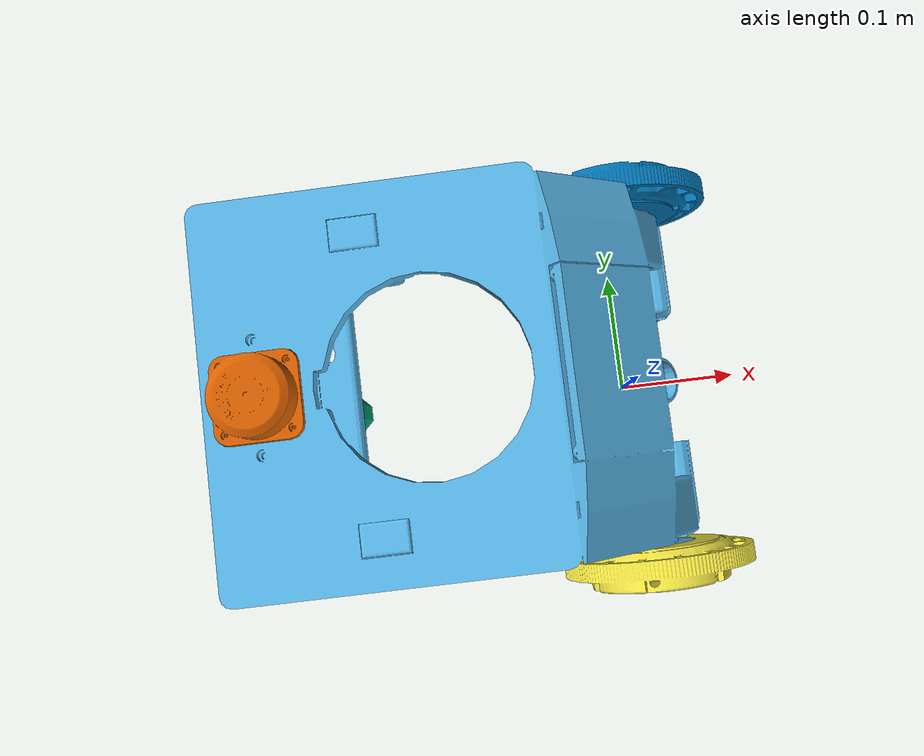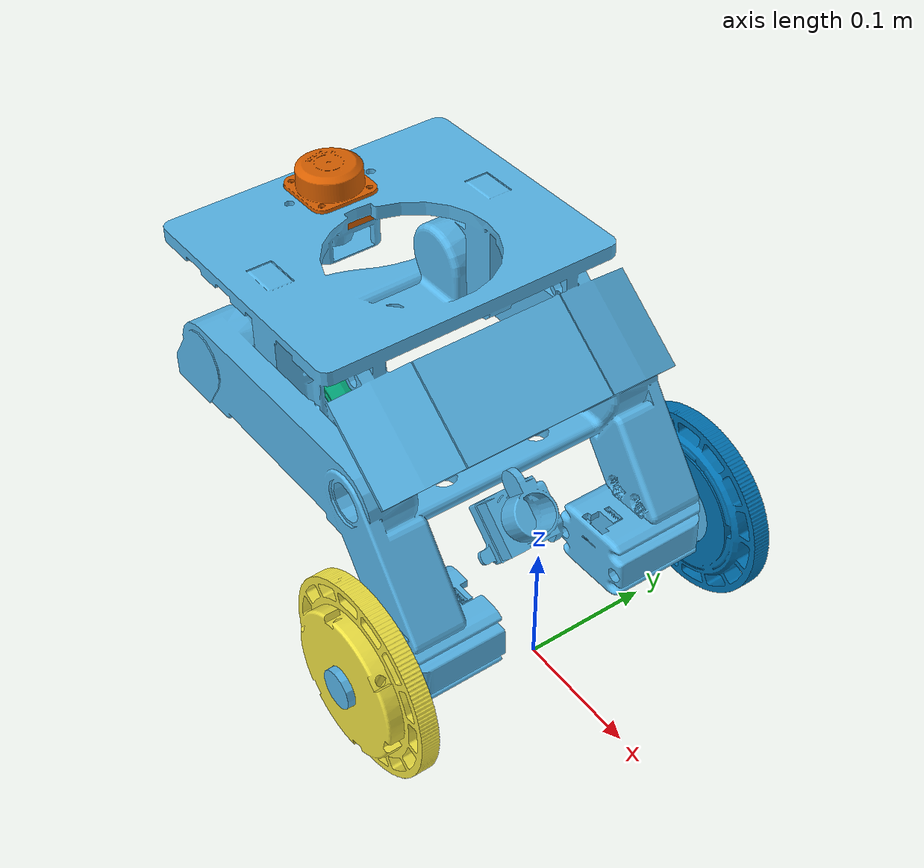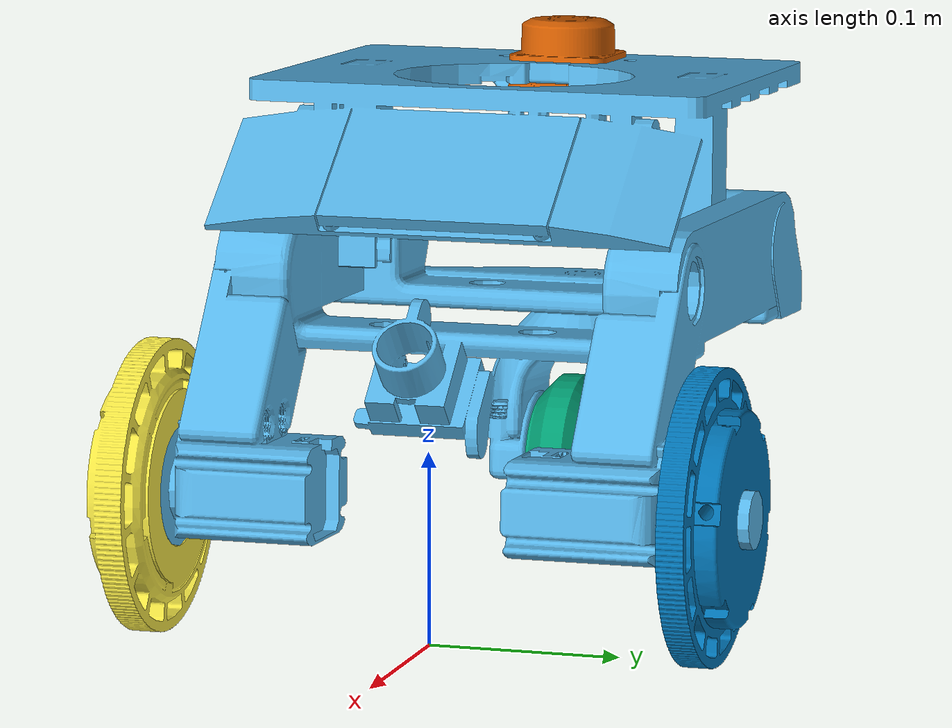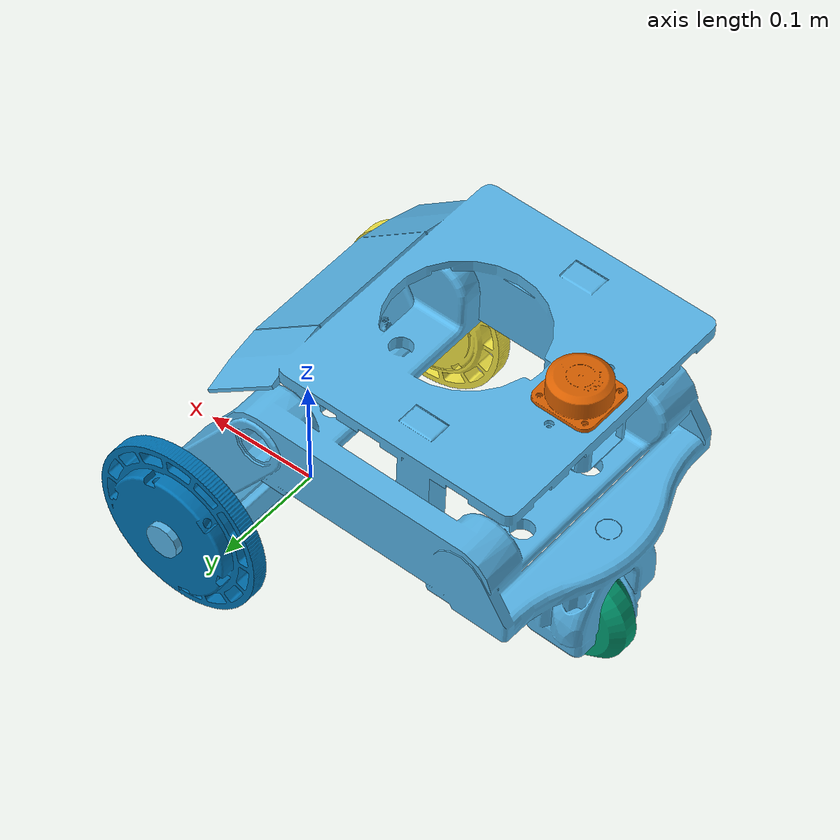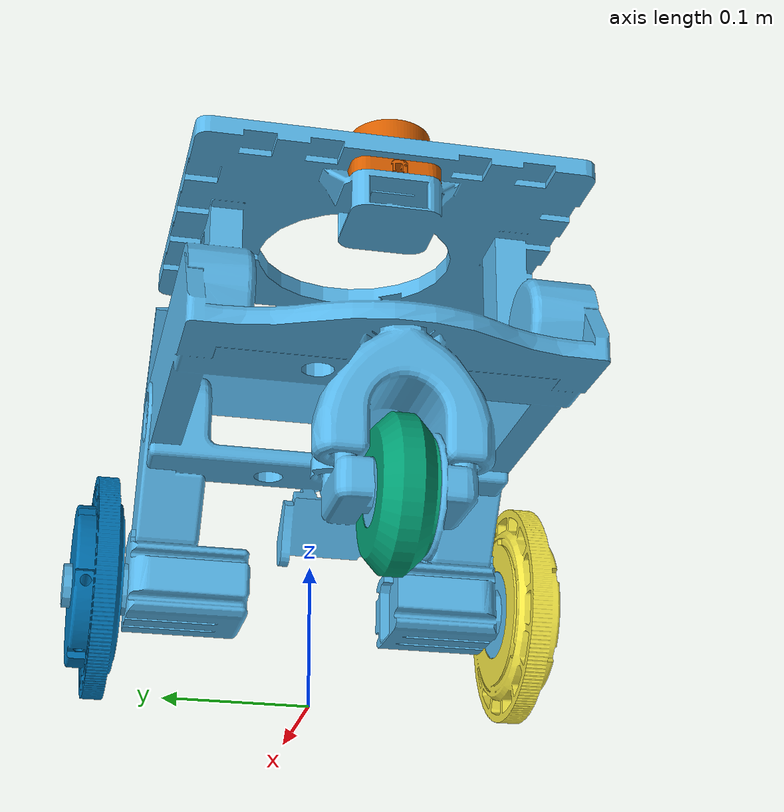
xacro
<?xml version="1.0" encoding="utf-8"?>
<robot name="kafeiche" xmlns:xacro="http://www.ros.org/wiki/xacro">

  <xacro:include filename="$(find kafeiche_description)/urdf/kafeiche_control.xacro" />
  <xacro:property name="mesh_pkg" value="package://kafeiche_description/meshes/" />

  <!-- ────────────────────────────────────────────────
       Макросы
  ──────────────────────────────────────────────── -->

  <xacro:macro name="simple_inertial" params="mass ixx:=0.01 iyy:=0.01 izz:=0.01">
    <inertial>
      <mass value="${mass}" />
      <inertia ixx="${ixx}" ixy="0.0" ixz="0.0" iyy="${iyy}" iyz="0.0" izz="${izz}" />
    </inertial>
  </xacro:macro>

  <xacro:macro name="mesh_link" params="name mesh mass origin_xyz origin_rpy ixx:=0.01 iyy:=0.01 izz:=0.01">
    <link name="${name}">
      <xacro:simple_inertial mass="${mass}" ixx="${ixx}" iyy="${iyy}" izz="${izz}" />
      <visual>
        <origin xyz="${origin_xyz}" rpy="${origin_rpy}" />
        <geometry>
          <mesh filename="${mesh}"/>
        </geometry>
      </visual>
      <collision>
        <origin xyz="${origin_xyz}" rpy="${origin_rpy}" />
        <geometry>
          <mesh filename="${mesh}"/>
        </geometry>
      </collision>
    </link>
  </xacro:macro>

  <!-- Фиксированное соединение -->
  <xacro:macro name="fixed_joint" params="name parent child origin_xyz origin_rpy">
    <joint name="${name}" type="fixed">
      <parent link="${parent}" />
      <child  link="${child}"  />
      <origin xyz="${origin_xyz}" rpy="${origin_rpy}" />
    </joint>
  </xacro:macro>

  <!-- Вращающееся соединение для колёс -->
  <xacro:macro name="wheel_joint" params="name parent child origin_xyz origin_rpy axis_xyz">
    <joint name="${name}" type="continuous">
      <parent link="${parent}" />
      <child  link="${child}"  />
      <origin xyz="${origin_xyz}" rpy="${origin_rpy}" />
      <axis xyz="${axis_xyz}" />
    </joint>
  </xacro:macro>

  <!-- ────────────────────────────────────────────────
       Основные ссылки
  ──────────────────────────────────────────────── -->

  <!-- base_link — корневая система координат -->
  <link name="base_link" />

  <!-- Главный корпус -->
  <xacro:mesh_link name="kafeiche_base"
                   mesh="${mesh_pkg}base.stl"
                   mass="5.0"
                   origin_xyz="0 0 0" origin_rpy="0 0 0" />

  <xacro:fixed_joint name="kafeiche_base_to_base_link"
                     parent="base_link" child="kafeiche_base"
                     origin_xyz="0 0 0" origin_rpy="0 0 0" />

  <!-- Пассивное колесо -->
  <xacro:mesh_link name="passive_wheel"
                   mesh="${mesh_pkg}passive.stl"
                   mass="0.5"
                   origin_xyz="0 0 0" origin_rpy="0 0 0" />

  <xacro:fixed_joint name="passive_joint"
                    parent="kafeiche_base" child="passive_wheel"
                    origin_xyz="-0.266 -0.017 0.046" origin_rpy="0 0 0" />

  <!-- Правое колесо -->
  <xacro:mesh_link name="right_wheel"
                   mesh="${mesh_pkg}right.stl"
                   mass="1.0"
                   origin_xyz="0 0 0" origin_rpy="0 0 0" />

  <xacro:wheel_joint name="right_wheel_joint"
                     parent="kafeiche_base" child="right_wheel"
                     origin_xyz="0 -0.156 0.075" origin_rpy="0 0 0"
                     axis_xyz="0 -1 0"/>

  <!-- Левое колесо -->
  <xacro:mesh_link name="left_wheel"
                   mesh="${mesh_pkg}left.stl"
                   mass="1.0"
                   origin_xyz="0 0 0" origin_rpy="0 0 0" />

  <xacro:wheel_joint name="left_wheel_joint"
                     parent="kafeiche_base" child="left_wheel"
                     origin_xyz="0 0.133 0.075" origin_rpy="0 0 0"
                     axis_xyz="0 -1 0" />

  <!-- Лидар -->
  <xacro:mesh_link name="laser"
                   mesh="${mesh_pkg}laser.stl"
                   mass="5.0"
                   origin_xyz="0 0 0" origin_rpy="0 0 0" />

  <xacro:fixed_joint name="laser_joint"
                     parent="kafeiche_base" child="laser"
                     origin_xyz="-0.257 0 0.278" origin_rpy="0 0.04 -3.1416" />

</robot>

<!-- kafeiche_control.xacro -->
<robot xmlns:xacro="http://www.ros.org/wiki/xacro">
  <ros2_control name="controller" type="system">
    <hardware>
      <plugin>kafeiche_drivers/DiffKfc</plugin>
      <param name="left_wheel_name">left_wheel_joint</param>
      <param name="right_wheel_name">right_wheel_joint</param>
    </hardware>
    <joint name="left_wheel_joint">
      <command_interface name="velocity" />
      <state_interface name="velocity" />
      <state_interface name="position" />
    </joint>
    <joint name="right_wheel_joint">
      <command_interface name="velocity" />
      <state_interface name="velocity" />
      <state_interface name="position" />
    </joint>
  </ros2_control>
  <parameters>$(find kafeiche_drivers)/config/controller.yaml</parameters>
</robot>
